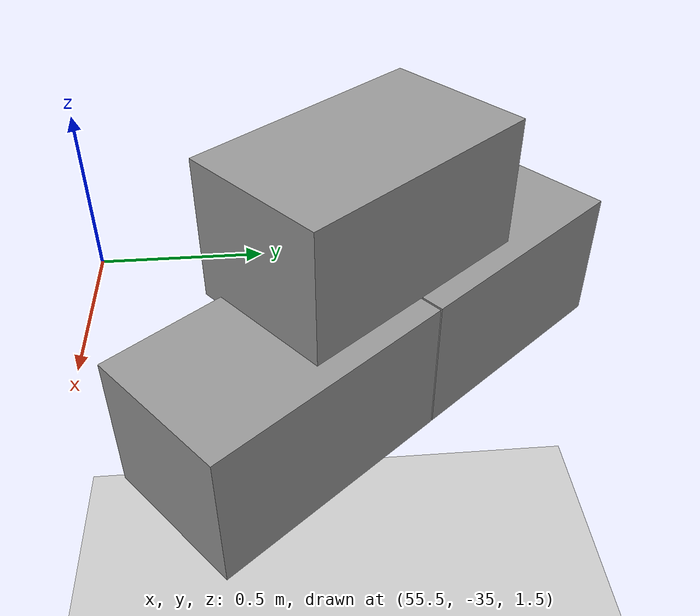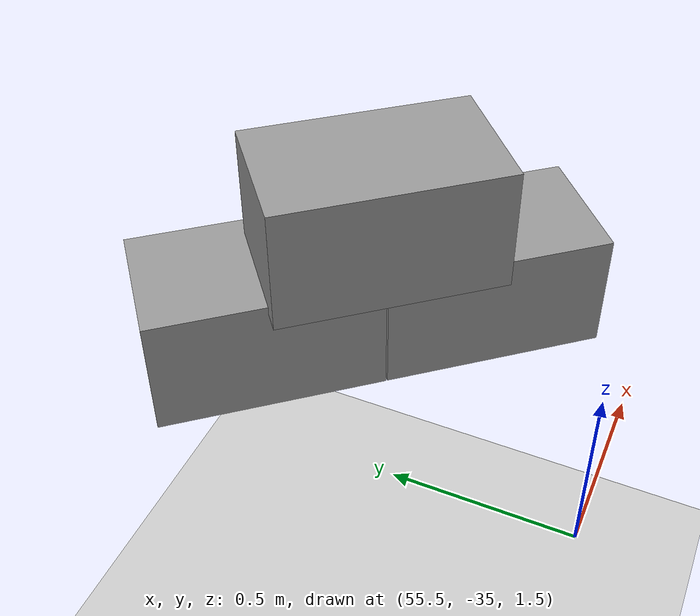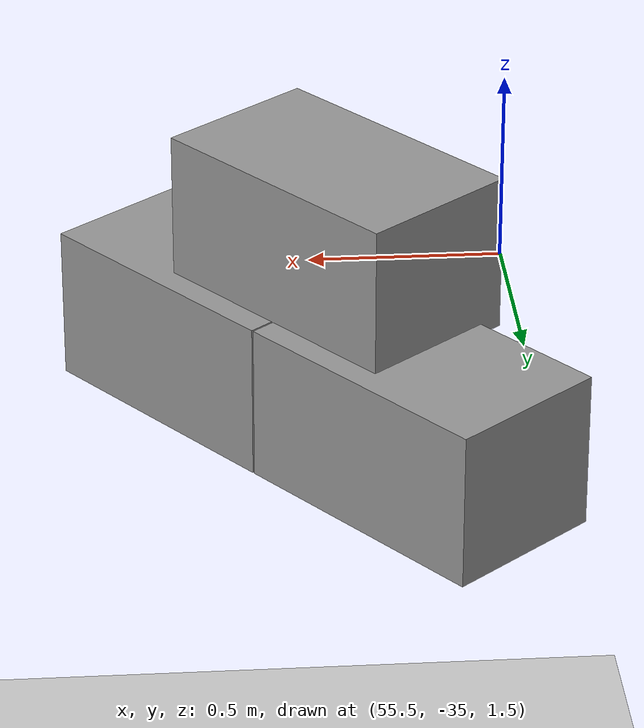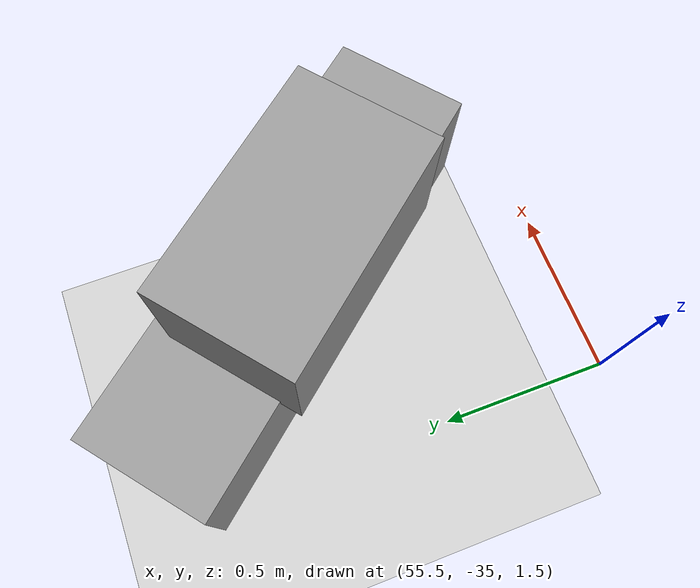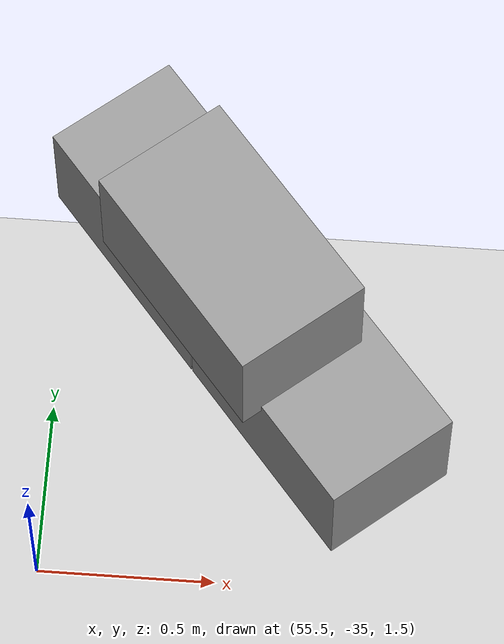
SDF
<sdf version="1.7">
 <world name="default">
  <model name="ground_plane">
   <static>1</static>
   <link name="link">
    <collision name="collision">
     <geometry><plane><normal>0 0 1</normal><size>100 100</size></plane></geometry>
     <surface>
      <contact><collide_bitmask>65535</collide_bitmask></contact>
      <friction><ode><mu>100</mu><mu2>50</mu2></ode></friction>
     </surface>
    </collision>
    <visual name="visual">
     <cast_shadows>0</cast_shadows>
     <geometry><plane><normal>0 0 1</normal><size>100 100</size></plane></geometry>
     <material>
      <script><uri>file://media/materials/scripts/gazebo.material</uri><name>Gazebo/Grey</name></script>
     </material>
    </visual>
   </link>
  </model>
  <model name="Add_Box_clone_clone_3_clone_14">
   <link name="link">
    <inertial>
     <mass>1</mass>
     <inertia>
      <ixx>0.166667</ixx>
      <ixy>0</ixy>
      <ixz>0</ixz>
      <iyy>0.166667</iyy>
      <iyz>0</iyz>
      <izz>0.166667</izz>
     </inertia>
    </inertial>
    <kinematic>1</kinematic>
    <gravity>0</gravity>
    <visual name="visual">
     <geometry><box><size>0.686 0.406 0.381</size></box></geometry>
     <material>
      <script><name>Gazebo/Grey</name><uri>file://media/materials/scripts/gazebo.material</uri></script>
      <shader type="pixel"><normal_map>__default__</normal_map></shader>
      <ambient>0.3 0.3 0.3 1</ambient>
      <diffuse>0.7 0.7 0.7 1</diffuse>
      <specular>0.01 0.01 0.01 1</specular>
      <emissive>0 0 0 1</emissive>
     </material>
    </visual>
    <collision name="collision">
     <geometry><box><size>1 1 1</size></box></geometry>
     <surface>
      <friction>
       <ode><mu>1</mu><mu2>1</mu2><fdir1>0 0 0</fdir1><slip1>0</slip1><slip2>0</slip2></ode>
       <torsional>
        <coefficient>1</coefficient>
        <patch_radius>0</patch_radius>
        <surface_radius>0</surface_radius>
        <use_patch_radius>1</use_patch_radius>
        <ode><slip>0</slip></ode>
       </torsional>
      </friction>
      <bounce><restitution_coefficient>0</restitution_coefficient><threshold>1e+06</threshold></bounce>
      <contact>
       <collide_without_contact>0</collide_without_contact>
       <collide_without_contact_bitmask>1</collide_without_contact_bitmask>
       <collide_bitmask>1</collide_bitmask>
       <ode>
        <soft_cfm>0</soft_cfm>
        <soft_erp>0.2</soft_erp>
        <kp>1e+13</kp>
        <kd>1</kd>
        <max_vel>0.01</max_vel>
        <min_depth>0</min_depth>
       </ode>
       <bullet>
        <split_impulse>1</split_impulse>
        <split_impulse_penetration_threshold>-0.01</split_impulse_penetration_threshold>
        <soft_cfm>0</soft_cfm>
        <soft_erp>0.2</soft_erp>
        <kp>1e+13</kp>
        <kd>1</kd>
       </bullet>
      </contact>
     </surface>
    </collision>
   </link>
   <link name="link_clone">
    <inertial>
     <mass>1</mass>
     <inertia>
      <ixx>0.166667</ixx>
      <ixy>0</ixy>
      <ixz>0</ixz>
      <iyy>0.166667</iyy>
      <iyz>0</iyz>
      <izz>0.166667</izz>
     </inertia>
    </inertial>
    <pose>-0.343354 -0.063316 0.354303 1e-05 -0 0</pose>
    <gravity>0</gravity>
    <visual name="visual">
     <geometry><box><size>0.686 0.406 0.381</size></box></geometry>
     <material>
      <script><name>Gazebo/Grey</name><uri>file://media/materials/scripts/gazebo.material</uri></script>
      <shader type="pixel"><normal_map>__default__</normal_map></shader>
      <ambient>0.3 0.3 0.3 1</ambient>
      <diffuse>0.7 0.7 0.7 1</diffuse>
      <specular>0.01 0.01 0.01 1</specular>
      <emissive>0 0 0 1</emissive>
     </material>
    </visual>
    <collision name="collision">
     <geometry><box><size>1 1 1</size></box></geometry>
     <surface>
      <friction>
       <ode><mu>1</mu><mu2>1</mu2><fdir1>0 0 0</fdir1><slip1>0</slip1><slip2>0</slip2></ode>
       <torsional>
        <coefficient>1</coefficient>
        <patch_radius>0</patch_radius>
        <surface_radius>0</surface_radius>
        <use_patch_radius>1</use_patch_radius>
        <ode><slip>0</slip></ode>
       </torsional>
      </friction>
      <bounce><restitution_coefficient>0</restitution_coefficient><threshold>1e+06</threshold></bounce>
      <contact>
       <collide_without_contact>0</collide_without_contact>
       <collide_without_contact_bitmask>1</collide_without_contact_bitmask>
       <collide_bitmask>1</collide_bitmask>
       <ode>
        <soft_cfm>0</soft_cfm>
        <soft_erp>0.2</soft_erp>
        <kp>1e+13</kp>
        <kd>1</kd>
        <max_vel>0.01</max_vel>
        <min_depth>0</min_depth>
       </ode>
       <bullet>
        <split_impulse>1</split_impulse>
        <split_impulse_penetration_threshold>-0.01</split_impulse_penetration_threshold>
        <soft_cfm>0</soft_cfm>
        <soft_erp>0.2</soft_erp>
        <kp>1e+13</kp>
        <kd>1</kd>
       </bullet>
      </contact>
     </surface>
    </collision>
   </link>
   <link name="link_clone_clone">
    <inertial>
     <mass>1</mass>
     <inertia>
      <ixx>0.166667</ixx>
      <ixy>0</ixy>
      <ixz>0</ixz>
      <iyy>0.166667</iyy>
      <iyz>0</iyz>
      <izz>0.166667</izz>
     </inertia>
    </inertial>
    <pose>-0.690786 -0.000183 -1e-05 2e-05 -0 0</pose>
    <gravity>0</gravity>
    <visual name="visual">
     <geometry><box><size>0.686 0.406 0.381</size></box></geometry>
     <material>
      <script><name>Gazebo/Grey</name><uri>file://media/materials/scripts/gazebo.material</uri></script>
      <shader type="pixel"><normal_map>__default__</normal_map></shader>
      <ambient>0.3 0.3 0.3 1</ambient>
      <diffuse>0.7 0.7 0.7 1</diffuse>
      <specular>0.01 0.01 0.01 1</specular>
      <emissive>0 0 0 1</emissive>
     </material>
    </visual>
    <collision name="collision">
     <geometry><box><size>1 1 1</size></box></geometry>
     <surface>
      <friction>
       <ode><mu>1</mu><mu2>1</mu2><fdir1>0 0 0</fdir1><slip1>0</slip1><slip2>0</slip2></ode>
       <torsional>
        <coefficient>1</coefficient>
        <patch_radius>0</patch_radius>
        <surface_radius>0</surface_radius>
        <use_patch_radius>1</use_patch_radius>
        <ode><slip>0</slip></ode>
       </torsional>
      </friction>
      <bounce><restitution_coefficient>0</restitution_coefficient><threshold>1e+06</threshold></bounce>
      <contact>
       <collide_without_contact>0</collide_without_contact>
       <collide_without_contact_bitmask>1</collide_without_contact_bitmask>
       <collide_bitmask>1</collide_bitmask>
       <ode>
        <soft_cfm>0</soft_cfm>
        <soft_erp>0.2</soft_erp>
        <kp>1e+13</kp>
        <kd>1</kd>
        <max_vel>0.01</max_vel>
        <min_depth>0</min_depth>
       </ode>
       <bullet>
        <split_impulse>1</split_impulse>
        <split_impulse_penetration_threshold>-0.01</split_impulse_penetration_threshold>
        <soft_cfm>0</soft_cfm>
        <soft_erp>0.2</soft_erp>
        <kp>1e+13</kp>
        <kd>1</kd>
       </bullet>
      </contact>
     </surface>
    </collision>
   </link>
   <static>0</static>
   <pose>56.2574 -34.4576 1.61518 0 0 -0.882233</pose>
  </model>
 </world>
</sdf>
